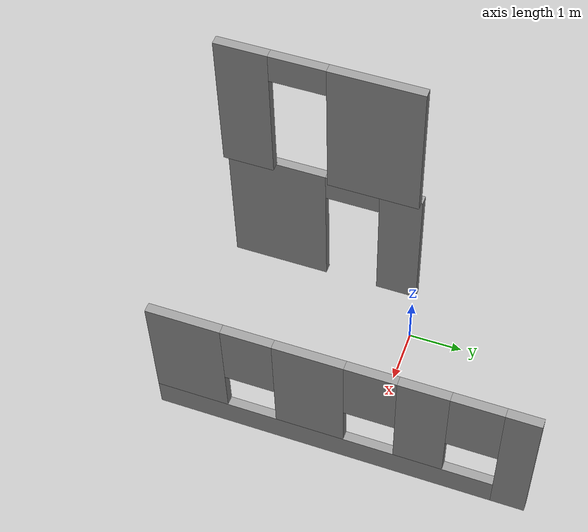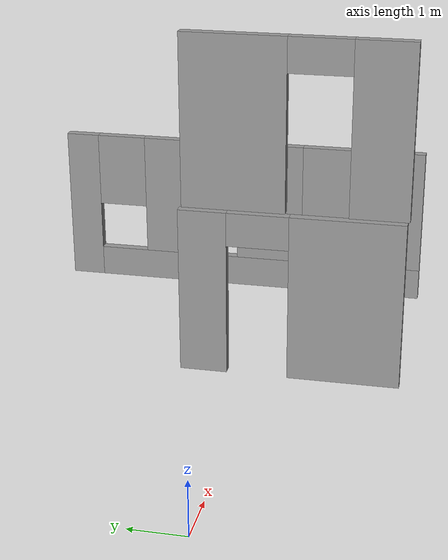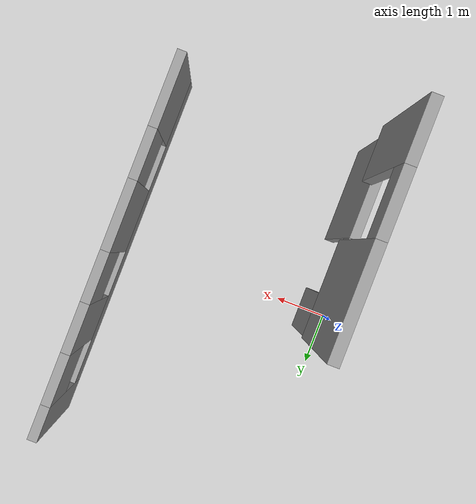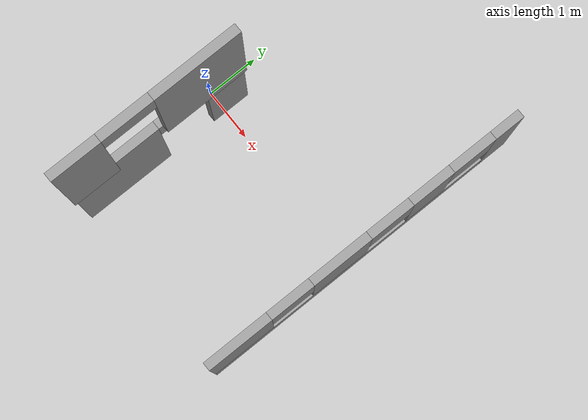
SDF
<sdf version="1.7">
 <model name="simple_building">
  <link name="Wall_19">
   <pose>4.05484 0.011464 2.5 0 0 -1.5708</pose>
   <visual name="Wall_19_Visual_0">
    <pose>-2.73149 0 1.25 0 -0 0</pose>
    <geometry><box><size>0.537024 0.15 2.5</size></box></geometry>
    <material>
     <script><uri>file://media/materials/scripts/gazebo.material</uri><name>Gazebo/Grey</name></script>
     <ambient>1 1 1 1</ambient>
     <shader type="pixel"/>
    </material>
   </visual>
   <visual name="Wall_19_Visual_1">
    <pose>0.268512 0 0.25 0 -0 0</pose>
    <geometry><box><size>5.46298 0.15 0.5</size></box></geometry>
    <material>
     <script><uri>file://media/materials/scripts/gazebo.material</uri><name>Gazebo/Grey</name></script>
     <ambient>1 1 1 1</ambient>
     <shader type="pixel"/>
    </material>
   </visual>
   <visual name="Wall_19_Visual_2">
    <pose>-1.27212 0 1.5 0 -0 0</pose>
    <geometry><box><size>0.78171 0.15 2</size></box></geometry>
    <material>
     <script><uri>file://media/materials/scripts/gazebo.material</uri><name>Gazebo/Grey</name></script>
     <ambient>1 1 1 1</ambient>
     <shader type="pixel"/>
    </material>
   </visual>
   <visual name="Wall_19_Visual_3">
    <pose>0.469281 0 1.5 0 -0 0</pose>
    <geometry><box><size>1.10109 0.15 2</size></box></geometry>
    <material>
     <script><uri>file://media/materials/scripts/gazebo.material</uri><name>Gazebo/Grey</name></script>
     <ambient>1 1 1 1</ambient>
     <shader type="pixel"/>
    </material>
   </visual>
   <visual name="Wall_19_Visual_4">
    <pose>2.40991 0 1.5 0 -0 0</pose>
    <geometry><box><size>1.18017 0.15 2</size></box></geometry>
    <material>
     <script><uri>file://media/materials/scripts/gazebo.material</uri><name>Gazebo/Grey</name></script>
     <ambient>1 1 1 1</ambient>
     <shader type="pixel"/>
    </material>
   </visual>
   <visual name="Wall_19_Visual_5">
    <pose>-2.06298 0 1.9 0 -0 0</pose>
    <geometry><box><size>0.8 0.15 1.2</size></box></geometry>
    <material>
     <script><uri>file://media/materials/scripts/gazebo.material</uri><name>Gazebo/Grey</name></script>
     <ambient>1 1 1 1</ambient>
     <shader type="pixel"/>
    </material>
   </visual>
   <visual name="Wall_19_Visual_6">
    <pose>-0.481266 0 1.9 0 -0 0</pose>
    <geometry><box><size>0.8 0.15 1.2</size></box></geometry>
    <material>
     <script><uri>file://media/materials/scripts/gazebo.material</uri><name>Gazebo/Grey</name></script>
     <ambient>1 1 1 1</ambient>
     <shader type="pixel"/>
    </material>
   </visual>
   <visual name="Wall_19_Visual_7">
    <pose>1.41983 0 1.9 0 -0 0</pose>
    <geometry><box><size>0.8 0.15 1.2</size></box></geometry>
    <material>
     <script><uri>file://media/materials/scripts/gazebo.material</uri><name>Gazebo/Grey</name></script>
     <ambient>1 1 1 1</ambient>
     <shader type="pixel"/>
    </material>
   </visual>
   <collision name="Wall_19_Collision_0">
    <pose>-2.73149 0 1.25 0 -0 0</pose>
    <geometry><box><size>0.537024 0.15 2.5</size></box></geometry>
    <surface>
     <friction>
      <ode><mu>1</mu><mu2>1</mu2><fdir1>0 0 0</fdir1><slip1>0</slip1><slip2>0</slip2></ode>
      <torsional>
       <coefficient>1</coefficient>
       <patch_radius>0</patch_radius>
       <surface_radius>0</surface_radius>
       <use_patch_radius>1</use_patch_radius>
       <ode><slip>0</slip></ode>
      </torsional>
     </friction>
     <bounce><restitution_coefficient>0</restitution_coefficient><threshold>1e+06</threshold></bounce>
     <contact>
      <collide_without_contact>0</collide_without_contact>
      <collide_without_contact_bitmask>1</collide_without_contact_bitmask>
      <collide_bitmask>1</collide_bitmask>
      <ode>
       <soft_cfm>0</soft_cfm>
       <soft_erp>0.2</soft_erp>
       <kp>1e+13</kp>
       <kd>1</kd>
       <max_vel>0.01</max_vel>
       <min_depth>0</min_depth>
      </ode>
      <bullet>
       <split_impulse>1</split_impulse>
       <split_impulse_penetration_threshold>-0.01</split_impulse_penetration_threshold>
       <soft_cfm>0</soft_cfm>
       <soft_erp>0.2</soft_erp>
       <kp>1e+13</kp>
       <kd>1</kd>
      </bullet>
     </contact>
    </surface>
   </collision>
   <collision name="Wall_19_Collision_1">
    <pose>0.268512 0 0.25 0 -0 0</pose>
    <geometry><box><size>5.46298 0.15 0.5</size></box></geometry>
    <surface>
     <friction>
      <ode><mu>1</mu><mu2>1</mu2><fdir1>0 0 0</fdir1><slip1>0</slip1><slip2>0</slip2></ode>
      <torsional>
       <coefficient>1</coefficient>
       <patch_radius>0</patch_radius>
       <surface_radius>0</surface_radius>
       <use_patch_radius>1</use_patch_radius>
       <ode><slip>0</slip></ode>
      </torsional>
     </friction>
     <bounce><restitution_coefficient>0</restitution_coefficient><threshold>1e+06</threshold></bounce>
     <contact>
      <collide_without_contact>0</collide_without_contact>
      <collide_without_contact_bitmask>1</collide_without_contact_bitmask>
      <collide_bitmask>1</collide_bitmask>
      <ode>
       <soft_cfm>0</soft_cfm>
       <soft_erp>0.2</soft_erp>
       <kp>1e+13</kp>
       <kd>1</kd>
       <max_vel>0.01</max_vel>
       <min_depth>0</min_depth>
      </ode>
      <bullet>
       <split_impulse>1</split_impulse>
       <split_impulse_penetration_threshold>-0.01</split_impulse_penetration_threshold>
       <soft_cfm>0</soft_cfm>
       <soft_erp>0.2</soft_erp>
       <kp>1e+13</kp>
       <kd>1</kd>
      </bullet>
     </contact>
    </surface>
   </collision>
   <collision name="Wall_19_Collision_2">
    <pose>-1.27212 0 1.5 0 -0 0</pose>
    <geometry><box><size>0.78171 0.15 2</size></box></geometry>
    <surface>
     <friction>
      <ode><mu>1</mu><mu2>1</mu2><fdir1>0 0 0</fdir1><slip1>0</slip1><slip2>0</slip2></ode>
      <torsional>
       <coefficient>1</coefficient>
       <patch_radius>0</patch_radius>
       <surface_radius>0</surface_radius>
       <use_patch_radius>1</use_patch_radius>
       <ode><slip>0</slip></ode>
      </torsional>
     </friction>
     <bounce><restitution_coefficient>0</restitution_coefficient><threshold>1e+06</threshold></bounce>
     <contact>
      <collide_without_contact>0</collide_without_contact>
      <collide_without_contact_bitmask>1</collide_without_contact_bitmask>
      <collide_bitmask>1</collide_bitmask>
      <ode>
       <soft_cfm>0</soft_cfm>
       <soft_erp>0.2</soft_erp>
       <kp>1e+13</kp>
       <kd>1</kd>
       <max_vel>0.01</max_vel>
       <min_depth>0</min_depth>
      </ode>
      <bullet>
       <split_impulse>1</split_impulse>
       <split_impulse_penetration_threshold>-0.01</split_impulse_penetration_threshold>
       <soft_cfm>0</soft_cfm>
       <soft_erp>0.2</soft_erp>
       <kp>1e+13</kp>
       <kd>1</kd>
      </bullet>
     </contact>
    </surface>
   </collision>
   <collision name="Wall_19_Collision_3">
    <pose>0.469281 0 1.5 0 -0 0</pose>
    <geometry><box><size>1.10109 0.15 2</size></box></geometry>
    <surface>
     <friction>
      <ode><mu>1</mu><mu2>1</mu2><fdir1>0 0 0</fdir1><slip1>0</slip1><slip2>0</slip2></ode>
      <torsional>
       <coefficient>1</coefficient>
       <patch_radius>0</patch_radius>
       <surface_radius>0</surface_radius>
       <use_patch_radius>1</use_patch_radius>
       <ode><slip>0</slip></ode>
      </torsional>
     </friction>
     <bounce><restitution_coefficient>0</restitution_coefficient><threshold>1e+06</threshold></bounce>
     <contact>
      <collide_without_contact>0</collide_without_contact>
      <collide_without_contact_bitmask>1</collide_without_contact_bitmask>
      <collide_bitmask>1</collide_bitmask>
      <ode>
       <soft_cfm>0</soft_cfm>
       <soft_erp>0.2</soft_erp>
       <kp>1e+13</kp>
       <kd>1</kd>
       <max_vel>0.01</max_vel>
       <min_depth>0</min_depth>
      </ode>
      <bullet>
       <split_impulse>1</split_impulse>
       <split_impulse_penetration_threshold>-0.01</split_impulse_penetration_threshold>
       <soft_cfm>0</soft_cfm>
       <soft_erp>0.2</soft_erp>
       <kp>1e+13</kp>
       <kd>1</kd>
      </bullet>
     </contact>
    </surface>
   </collision>
   <collision name="Wall_19_Collision_4">
    <pose>2.40991 0 1.5 0 -0 0</pose>
    <geometry><box><size>1.18017 0.15 2</size></box></geometry>
    <surface>
     <friction>
      <ode><mu>1</mu><mu2>1</mu2><fdir1>0 0 0</fdir1><slip1>0</slip1><slip2>0</slip2></ode>
      <torsional>
       <coefficient>1</coefficient>
       <patch_radius>0</patch_radius>
       <surface_radius>0</surface_radius>
       <use_patch_radius>1</use_patch_radius>
       <ode><slip>0</slip></ode>
      </torsional>
     </friction>
     <bounce><restitution_coefficient>0</restitution_coefficient><threshold>1e+06</threshold></bounce>
     <contact>
      <collide_without_contact>0</collide_without_contact>
      <collide_without_contact_bitmask>1</collide_without_contact_bitmask>
      <collide_bitmask>1</collide_bitmask>
      <ode>
       <soft_cfm>0</soft_cfm>
       <soft_erp>0.2</soft_erp>
       <kp>1e+13</kp>
       <kd>1</kd>
       <max_vel>0.01</max_vel>
       <min_depth>0</min_depth>
      </ode>
      <bullet>
       <split_impulse>1</split_impulse>
       <split_impulse_penetration_threshold>-0.01</split_impulse_penetration_threshold>
       <soft_cfm>0</soft_cfm>
       <soft_erp>0.2</soft_erp>
       <kp>1e+13</kp>
       <kd>1</kd>
      </bullet>
     </contact>
    </surface>
   </collision>
   <collision name="Wall_19_Collision_5">
    <pose>-2.06298 0 1.9 0 -0 0</pose>
    <geometry><box><size>0.8 0.15 1.2</size></box></geometry>
    <surface>
     <friction>
      <ode><mu>1</mu><mu2>1</mu2><fdir1>0 0 0</fdir1><slip1>0</slip1><slip2>0</slip2></ode>
      <torsional>
       <coefficient>1</coefficient>
       <patch_radius>0</patch_radius>
       <surface_radius>0</surface_radius>
       <use_patch_radius>1</use_patch_radius>
       <ode><slip>0</slip></ode>
      </torsional>
     </friction>
     <bounce><restitution_coefficient>0</restitution_coefficient><threshold>1e+06</threshold></bounce>
     <contact>
      <collide_without_contact>0</collide_without_contact>
      <collide_without_contact_bitmask>1</collide_without_contact_bitmask>
      <collide_bitmask>1</collide_bitmask>
      <ode>
       <soft_cfm>0</soft_cfm>
       <soft_erp>0.2</soft_erp>
       <kp>1e+13</kp>
       <kd>1</kd>
       <max_vel>0.01</max_vel>
       <min_depth>0</min_depth>
      </ode>
      <bullet>
       <split_impulse>1</split_impulse>
       <split_impulse_penetration_threshold>-0.01</split_impulse_penetration_threshold>
       <soft_cfm>0</soft_cfm>
       <soft_erp>0.2</soft_erp>
       <kp>1e+13</kp>
       <kd>1</kd>
      </bullet>
     </contact>
    </surface>
   </collision>
   <collision name="Wall_19_Collision_6">
    <pose>-0.481266 0 1.9 0 -0 0</pose>
    <geometry><box><size>0.8 0.15 1.2</size></box></geometry>
    <surface>
     <friction>
      <ode><mu>1</mu><mu2>1</mu2><fdir1>0 0 0</fdir1><slip1>0</slip1><slip2>0</slip2></ode>
      <torsional>
       <coefficient>1</coefficient>
       <patch_radius>0</patch_radius>
       <surface_radius>0</surface_radius>
       <use_patch_radius>1</use_patch_radius>
       <ode><slip>0</slip></ode>
      </torsional>
     </friction>
     <bounce><restitution_coefficient>0</restitution_coefficient><threshold>1e+06</threshold></bounce>
     <contact>
      <collide_without_contact>0</collide_without_contact>
      <collide_without_contact_bitmask>1</collide_without_contact_bitmask>
      <collide_bitmask>1</collide_bitmask>
      <ode>
       <soft_cfm>0</soft_cfm>
       <soft_erp>0.2</soft_erp>
       <kp>1e+13</kp>
       <kd>1</kd>
       <max_vel>0.01</max_vel>
       <min_depth>0</min_depth>
      </ode>
      <bullet>
       <split_impulse>1</split_impulse>
       <split_impulse_penetration_threshold>-0.01</split_impulse_penetration_threshold>
       <soft_cfm>0</soft_cfm>
       <soft_erp>0.2</soft_erp>
       <kp>1e+13</kp>
       <kd>1</kd>
      </bullet>
     </contact>
    </surface>
   </collision>
   <collision name="Wall_19_Collision_7">
    <pose>1.41983 0 1.9 0 -0 0</pose>
    <geometry><box><size>0.8 0.15 1.2</size></box></geometry>
    <surface>
     <friction>
      <ode><mu>1</mu><mu2>1</mu2><fdir1>0 0 0</fdir1><slip1>0</slip1><slip2>0</slip2></ode>
      <torsional>
       <coefficient>1</coefficient>
       <patch_radius>0</patch_radius>
       <surface_radius>0</surface_radius>
       <use_patch_radius>1</use_patch_radius>
       <ode><slip>0</slip></ode>
      </torsional>
     </friction>
     <bounce><restitution_coefficient>0</restitution_coefficient><threshold>1e+06</threshold></bounce>
     <contact>
      <collide_without_contact>0</collide_without_contact>
      <collide_without_contact_bitmask>1</collide_without_contact_bitmask>
      <collide_bitmask>1</collide_bitmask>
      <ode>
       <soft_cfm>0</soft_cfm>
       <soft_erp>0.2</soft_erp>
       <kp>1e+13</kp>
       <kd>1</kd>
       <max_vel>0.01</max_vel>
       <min_depth>0</min_depth>
      </ode>
      <bullet>
       <split_impulse>1</split_impulse>
       <split_impulse_penetration_threshold>-0.01</split_impulse_penetration_threshold>
       <soft_cfm>0</soft_cfm>
       <soft_erp>0.2</soft_erp>
       <kp>1e+13</kp>
       <kd>1</kd>
      </bullet>
     </contact>
    </surface>
   </collision>
  </link>
  <link name="Wall_32">
   <pose>0.906209 -1.38646 5 0 -0 1.5708</pose>
   <visual name="Wall_32_Visual_0">
    <pose>-1.20054 0 1.25 0 -0 0</pose>
    <geometry><box><size>0.848925 0.15 2.5</size></box></geometry>
    <material>
     <script><uri>file://media/materials/scripts/gazebo.material</uri><name>Gazebo/Grey</name></script>
     <ambient>1 1 1 1</ambient>
     <shader type="pixel"/>
    </material>
   </visual>
   <visual name="Wall_32_Visual_1">
    <pose>0.874463 0 1.25 0 -0 0</pose>
    <geometry><box><size>1.50107 0.15 2.5</size></box></geometry>
    <material>
     <script><uri>file://media/materials/scripts/gazebo.material</uri><name>Gazebo/Grey</name></script>
     <ambient>1 1 1 1</ambient>
     <shader type="pixel"/>
    </material>
   </visual>
   <visual name="Wall_32_Visual_2">
    <pose>-0.326075 0 2.25 0 -0 0</pose>
    <geometry><box><size>0.9 0.15 0.5</size></box></geometry>
    <material>
     <script><uri>file://media/materials/scripts/gazebo.material</uri><name>Gazebo/Grey</name></script>
     <ambient>1 1 1 1</ambient>
     <shader type="pixel"/>
    </material>
   </visual>
   <collision name="Wall_32_Collision_0">
    <pose>-1.20054 0 1.25 0 -0 0</pose>
    <geometry><box><size>0.848925 0.15 2.5</size></box></geometry>
    <surface>
     <friction>
      <ode><mu>1</mu><mu2>1</mu2><fdir1>0 0 0</fdir1><slip1>0</slip1><slip2>0</slip2></ode>
      <torsional>
       <coefficient>1</coefficient>
       <patch_radius>0</patch_radius>
       <surface_radius>0</surface_radius>
       <use_patch_radius>1</use_patch_radius>
       <ode><slip>0</slip></ode>
      </torsional>
     </friction>
     <bounce><restitution_coefficient>0</restitution_coefficient><threshold>1e+06</threshold></bounce>
     <contact>
      <collide_without_contact>0</collide_without_contact>
      <collide_without_contact_bitmask>1</collide_without_contact_bitmask>
      <collide_bitmask>1</collide_bitmask>
      <ode>
       <soft_cfm>0</soft_cfm>
       <soft_erp>0.2</soft_erp>
       <kp>1e+13</kp>
       <kd>1</kd>
       <max_vel>0.01</max_vel>
       <min_depth>0</min_depth>
      </ode>
      <bullet>
       <split_impulse>1</split_impulse>
       <split_impulse_penetration_threshold>-0.01</split_impulse_penetration_threshold>
       <soft_cfm>0</soft_cfm>
       <soft_erp>0.2</soft_erp>
       <kp>1e+13</kp>
       <kd>1</kd>
      </bullet>
     </contact>
    </surface>
   </collision>
   <collision name="Wall_32_Collision_1">
    <pose>0.874463 0 1.25 0 -0 0</pose>
    <geometry><box><size>1.50107 0.15 2.5</size></box></geometry>
    <surface>
     <friction>
      <ode><mu>1</mu><mu2>1</mu2><fdir1>0 0 0</fdir1><slip1>0</slip1><slip2>0</slip2></ode>
      <torsional>
       <coefficient>1</coefficient>
       <patch_radius>0</patch_radius>
       <surface_radius>0</surface_radius>
       <use_patch_radius>1</use_patch_radius>
       <ode><slip>0</slip></ode>
      </torsional>
     </friction>
     <bounce><restitution_coefficient>0</restitution_coefficient><threshold>1e+06</threshold></bounce>
     <contact>
      <collide_without_contact>0</collide_without_contact>
      <collide_without_contact_bitmask>1</collide_without_contact_bitmask>
      <collide_bitmask>1</collide_bitmask>
      <ode>
       <soft_cfm>0</soft_cfm>
       <soft_erp>0.2</soft_erp>
       <kp>1e+13</kp>
       <kd>1</kd>
       <max_vel>0.01</max_vel>
       <min_depth>0</min_depth>
      </ode>
      <bullet>
       <split_impulse>1</split_impulse>
       <split_impulse_penetration_threshold>-0.01</split_impulse_penetration_threshold>
       <soft_cfm>0</soft_cfm>
       <soft_erp>0.2</soft_erp>
       <kp>1e+13</kp>
       <kd>1</kd>
      </bullet>
     </contact>
    </surface>
   </collision>
   <collision name="Wall_32_Collision_2">
    <pose>-0.326075 0 2.25 0 -0 0</pose>
    <geometry><box><size>0.9 0.15 0.5</size></box></geometry>
    <surface>
     <friction>
      <ode><mu>1</mu><mu2>1</mu2><fdir1>0 0 0</fdir1><slip1>0</slip1><slip2>0</slip2></ode>
      <torsional>
       <coefficient>1</coefficient>
       <patch_radius>0</patch_radius>
       <surface_radius>0</surface_radius>
       <use_patch_radius>1</use_patch_radius>
       <ode><slip>0</slip></ode>
      </torsional>
     </friction>
     <bounce><restitution_coefficient>0</restitution_coefficient><threshold>1e+06</threshold></bounce>
     <contact>
      <collide_without_contact>0</collide_without_contact>
      <collide_without_contact_bitmask>1</collide_without_contact_bitmask>
      <collide_bitmask>1</collide_bitmask>
      <ode>
       <soft_cfm>0</soft_cfm>
       <soft_erp>0.2</soft_erp>
       <kp>1e+13</kp>
       <kd>1</kd>
       <max_vel>0.01</max_vel>
       <min_depth>0</min_depth>
      </ode>
      <bullet>
       <split_impulse>1</split_impulse>
       <split_impulse_penetration_threshold>-0.01</split_impulse_penetration_threshold>
       <soft_cfm>0</soft_cfm>
       <soft_erp>0.2</soft_erp>
       <kp>1e+13</kp>
       <kd>1</kd>
      </bullet>
     </contact>
    </surface>
   </collision>
  </link>
  <link name="Wall_36">
   <pose>0.779949 -1.36145 2.5 0 0 -1.5708</pose>
   <visual name="Wall_36_Visual_0">
    <pose>-1.27259 0 1.25 0 -0 0</pose>
    <geometry><box><size>0.704821 0.15 2.5</size></box></geometry>
    <material>
     <script><uri>file://media/materials/scripts/gazebo.material</uri><name>Gazebo/Grey</name></script>
     <ambient>1 1 1 1</ambient>
     <shader type="pixel"/>
    </material>
   </visual>
   <visual name="Wall_36_Visual_1">
    <pose>0.802411 0 1.25 0 -0 0</pose>
    <geometry><box><size>1.64518 0.15 2.5</size></box></geometry>
    <material>
     <script><uri>file://media/materials/scripts/gazebo.material</uri><name>Gazebo/Grey</name></script>
     <ambient>1 1 1 1</ambient>
     <shader type="pixel"/>
    </material>
   </visual>
   <visual name="Wall_36_Visual_2">
    <pose>-0.470179 0 2.25 0 -0 0</pose>
    <geometry><box><size>0.9 0.15 0.5</size></box></geometry>
    <material>
     <script><uri>file://media/materials/scripts/gazebo.material</uri><name>Gazebo/Grey</name></script>
     <ambient>1 1 1 1</ambient>
     <shader type="pixel"/>
    </material>
   </visual>
   <collision name="Wall_36_Collision_0">
    <pose>-1.27259 0 1.25 0 -0 0</pose>
    <geometry><box><size>0.704821 0.15 2.5</size></box></geometry>
    <surface>
     <friction>
      <ode><mu>1</mu><mu2>1</mu2><fdir1>0 0 0</fdir1><slip1>0</slip1><slip2>0</slip2></ode>
      <torsional>
       <coefficient>1</coefficient>
       <patch_radius>0</patch_radius>
       <surface_radius>0</surface_radius>
       <use_patch_radius>1</use_patch_radius>
       <ode><slip>0</slip></ode>
      </torsional>
     </friction>
     <bounce><restitution_coefficient>0</restitution_coefficient><threshold>1e+06</threshold></bounce>
     <contact>
      <collide_without_contact>0</collide_without_contact>
      <collide_without_contact_bitmask>1</collide_without_contact_bitmask>
      <collide_bitmask>1</collide_bitmask>
      <ode>
       <soft_cfm>0</soft_cfm>
       <soft_erp>0.2</soft_erp>
       <kp>1e+13</kp>
       <kd>1</kd>
       <max_vel>0.01</max_vel>
       <min_depth>0</min_depth>
      </ode>
      <bullet>
       <split_impulse>1</split_impulse>
       <split_impulse_penetration_threshold>-0.01</split_impulse_penetration_threshold>
       <soft_cfm>0</soft_cfm>
       <soft_erp>0.2</soft_erp>
       <kp>1e+13</kp>
       <kd>1</kd>
      </bullet>
     </contact>
    </surface>
   </collision>
   <collision name="Wall_36_Collision_1">
    <pose>0.802411 0 1.25 0 -0 0</pose>
    <geometry><box><size>1.64518 0.15 2.5</size></box></geometry>
    <surface>
     <friction>
      <ode><mu>1</mu><mu2>1</mu2><fdir1>0 0 0</fdir1><slip1>0</slip1><slip2>0</slip2></ode>
      <torsional>
       <coefficient>1</coefficient>
       <patch_radius>0</patch_radius>
       <surface_radius>0</surface_radius>
       <use_patch_radius>1</use_patch_radius>
       <ode><slip>0</slip></ode>
      </torsional>
     </friction>
     <bounce><restitution_coefficient>0</restitution_coefficient><threshold>1e+06</threshold></bounce>
     <contact>
      <collide_without_contact>0</collide_without_contact>
      <collide_without_contact_bitmask>1</collide_without_contact_bitmask>
      <collide_bitmask>1</collide_bitmask>
      <ode>
       <soft_cfm>0</soft_cfm>
       <soft_erp>0.2</soft_erp>
       <kp>1e+13</kp>
       <kd>1</kd>
       <max_vel>0.01</max_vel>
       <min_depth>0</min_depth>
      </ode>
      <bullet>
       <split_impulse>1</split_impulse>
       <split_impulse_penetration_threshold>-0.01</split_impulse_penetration_threshold>
       <soft_cfm>0</soft_cfm>
       <soft_erp>0.2</soft_erp>
       <kp>1e+13</kp>
       <kd>1</kd>
      </bullet>
     </contact>
    </surface>
   </collision>
   <collision name="Wall_36_Collision_2">
    <pose>-0.470179 0 2.25 0 -0 0</pose>
    <geometry><box><size>0.9 0.15 0.5</size></box></geometry>
    <surface>
     <friction>
      <ode><mu>1</mu><mu2>1</mu2><fdir1>0 0 0</fdir1><slip1>0</slip1><slip2>0</slip2></ode>
      <torsional>
       <coefficient>1</coefficient>
       <patch_radius>0</patch_radius>
       <surface_radius>0</surface_radius>
       <use_patch_radius>1</use_patch_radius>
       <ode><slip>0</slip></ode>
      </torsional>
     </friction>
     <bounce><restitution_coefficient>0</restitution_coefficient><threshold>1e+06</threshold></bounce>
     <contact>
      <collide_without_contact>0</collide_without_contact>
      <collide_without_contact_bitmask>1</collide_without_contact_bitmask>
      <collide_bitmask>1</collide_bitmask>
      <ode>
       <soft_cfm>0</soft_cfm>
       <soft_erp>0.2</soft_erp>
       <kp>1e+13</kp>
       <kd>1</kd>
       <max_vel>0.01</max_vel>
       <min_depth>0</min_depth>
      </ode>
      <bullet>
       <split_impulse>1</split_impulse>
       <split_impulse_penetration_threshold>-0.01</split_impulse_penetration_threshold>
       <soft_cfm>0</soft_cfm>
       <soft_erp>0.2</soft_erp>
       <kp>1e+13</kp>
       <kd>1</kd>
      </bullet>
     </contact>
    </surface>
   </collision>
  </link>
  <static>1</static>
 </model>
</sdf>
